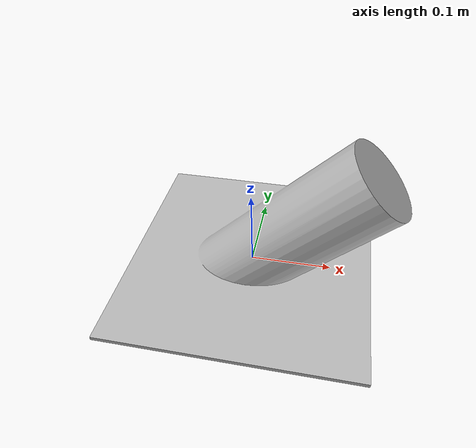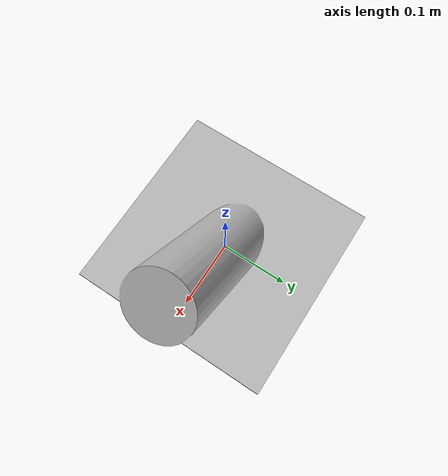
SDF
<?xml version="1.0" ?>
<sdf version="1.6">
  <model name="cylinder_diagonal">
    <static>true</static>
    <link name="link">
      <collision name="collision">
        <geometry>
          <mesh>
            <scale>0.001 0.001 0.001</scale>
            <uri>model://cylinder_diagonal/meshes/cylinder_diagonal.stl</uri>
          </mesh>
        </geometry>
      </collision>
      <visual name="visual">
        <geometry>
          <mesh>
            <scale>0.001 0.001 0.001</scale>
            <uri>model://cylinder_diagonal/meshes/cylinder_diagonal.stl</uri>
          </mesh>
        </geometry>
      </visual>
    </link>
  </model>
</sdf>
